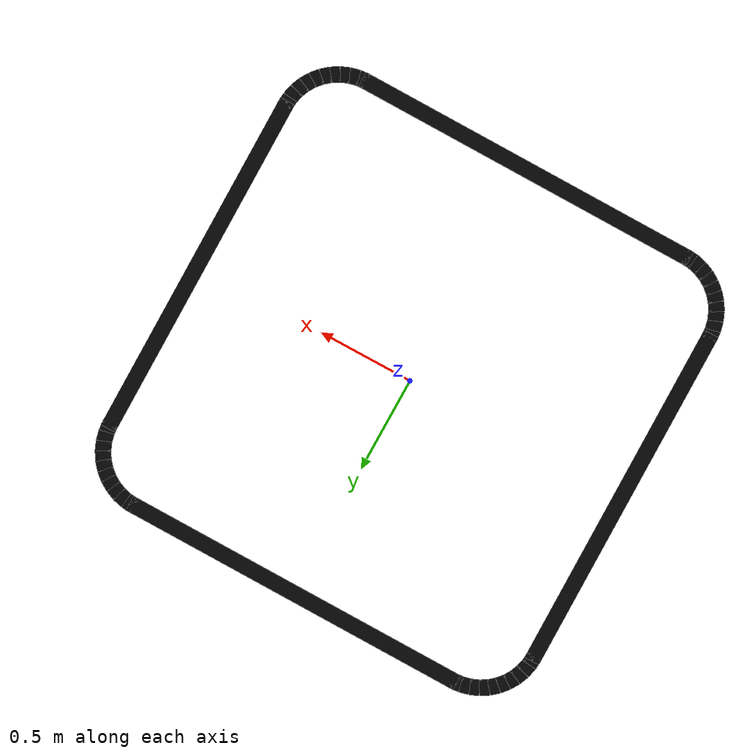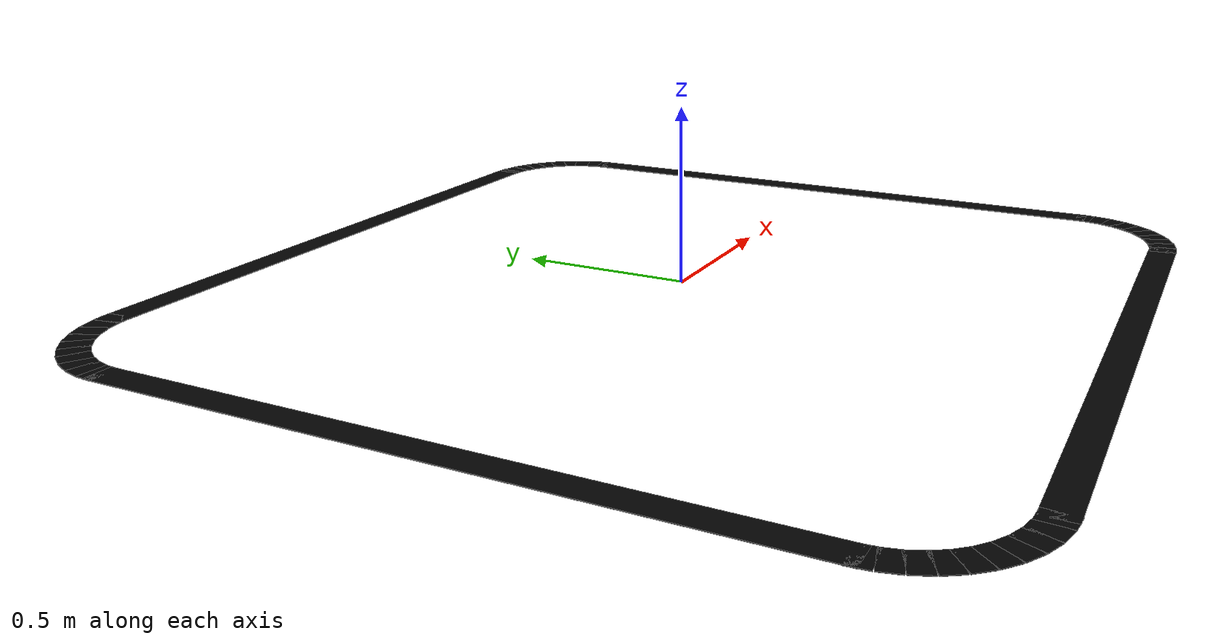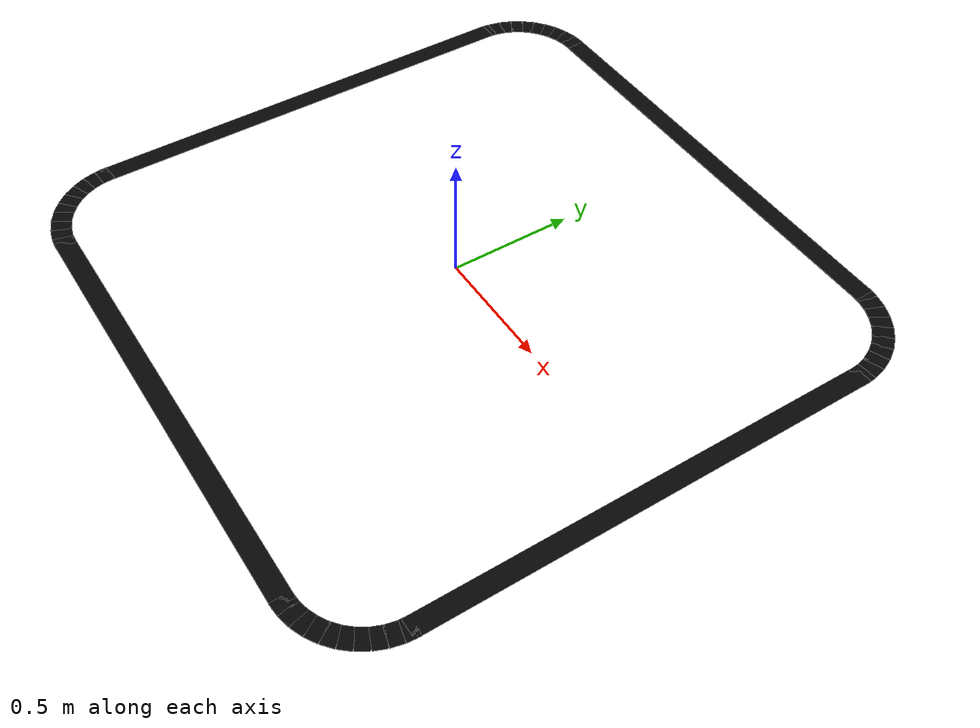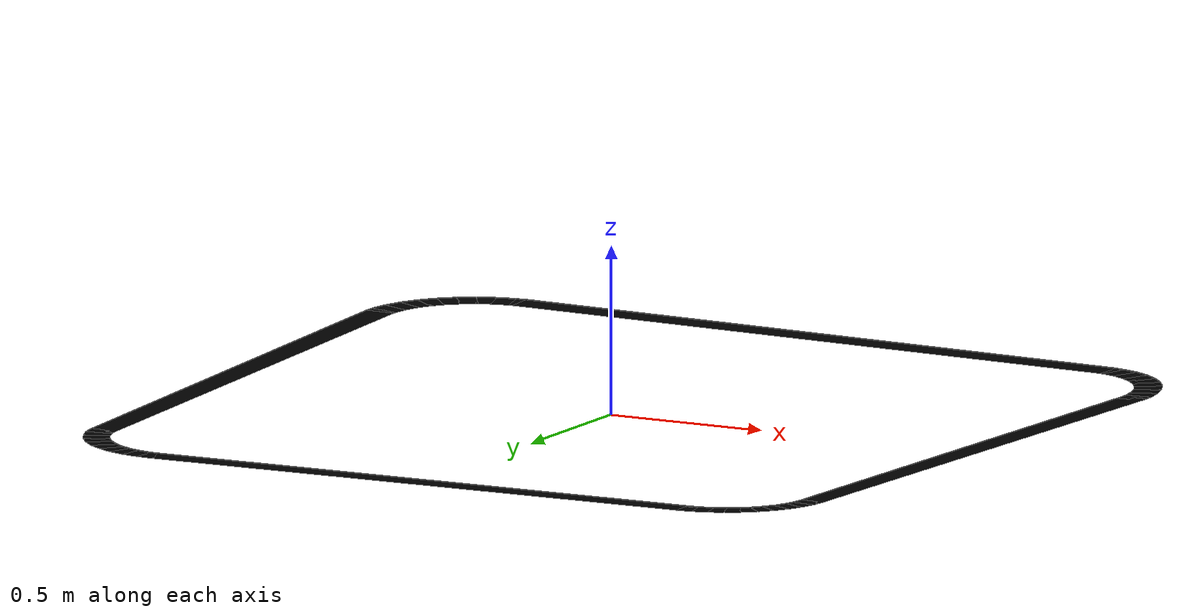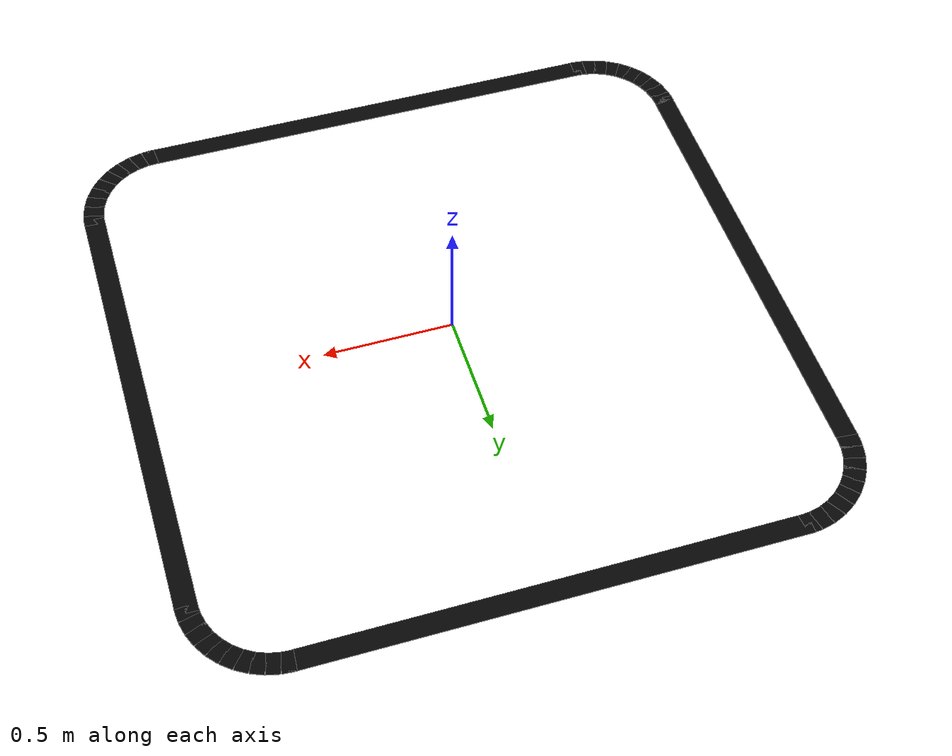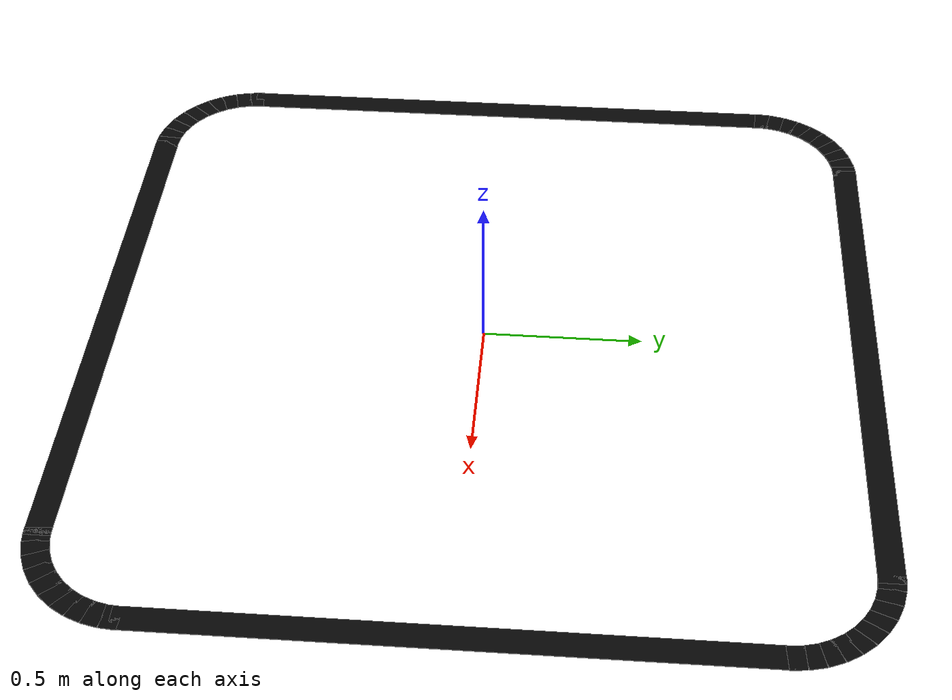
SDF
<?xml version="1.0"?>
<sdf version="1.8">
  <model name="line_track_square">
    <static>true</static>
    <link name="track">
      <visual name='seg_000'>
        <pose>0.923538 1.199075 0.001000 0.000000 0.000000 -0.078540</pose>
        <geometry>
          <box>
            <size>0.050894 0.080000 0.002000</size>
          </box>
        </geometry>
      <material>
        <ambient>0.02 0.02 0.02 1</ambient>
        <diffuse>0.02 0.02 0.02 1</diffuse>
        <specular>0.0 0.0 0.0 1</specular>
      </material>
      </visual>
      <visual name='seg_001'>
        <pose>0.970034 1.191711 0.001000 0.000000 0.000000 -0.235619</pose>
        <geometry>
          <box>
            <size>0.050894 0.080000 0.002000</size>
          </box>
        </geometry>
      <material>
        <ambient>0.02 0.02 0.02 1</ambient>
        <diffuse>0.02 0.02 0.02 1</diffuse>
        <specular>0.0 0.0 0.0 1</specular>
      </material>
      </visual>
      <visual name='seg_002'>
        <pose>1.014805 1.177164 0.001000 0.000000 0.000000 -0.392699</pose>
        <geometry>
          <box>
            <size>0.050894 0.080000 0.002000</size>
          </box>
        </geometry>
      <material>
        <ambient>0.02 0.02 0.02 1</ambient>
        <diffuse>0.02 0.02 0.02 1</diffuse>
        <specular>0.0 0.0 0.0 1</specular>
      </material>
      </visual>
      <visual name='seg_003'>
        <pose>1.056750 1.155792 0.001000 0.000000 0.000000 -0.549779</pose>
        <geometry>
          <box>
            <size>0.050894 0.080000 0.002000</size>
          </box>
        </geometry>
      <material>
        <ambient>0.02 0.02 0.02 1</ambient>
        <diffuse>0.02 0.02 0.02 1</diffuse>
        <specular>0.0 0.0 0.0 1</specular>
      </material>
      </visual>
      <visual name='seg_004'>
        <pose>1.094834 1.128122 0.001000 0.000000 0.000000 -0.706858</pose>
        <geometry>
          <box>
            <size>0.050894 0.080000 0.002000</size>
          </box>
        </geometry>
      <material>
        <ambient>0.02 0.02 0.02 1</ambient>
        <diffuse>0.02 0.02 0.02 1</diffuse>
        <specular>0.0 0.0 0.0 1</specular>
      </material>
      </visual>
      <visual name='seg_005'>
        <pose>1.128122 1.094834 0.001000 0.000000 0.000000 -0.863938</pose>
        <geometry>
          <box>
            <size>0.050894 0.080000 0.002000</size>
          </box>
        </geometry>
      <material>
        <ambient>0.02 0.02 0.02 1</ambient>
        <diffuse>0.02 0.02 0.02 1</diffuse>
        <specular>0.0 0.0 0.0 1</specular>
      </material>
      </visual>
      <visual name='seg_006'>
        <pose>1.155792 1.056750 0.001000 0.000000 0.000000 -1.021018</pose>
        <geometry>
          <box>
            <size>0.050894 0.080000 0.002000</size>
          </box>
        </geometry>
      <material>
        <ambient>0.02 0.02 0.02 1</ambient>
        <diffuse>0.02 0.02 0.02 1</diffuse>
        <specular>0.0 0.0 0.0 1</specular>
      </material>
      </visual>
      <visual name='seg_007'>
        <pose>1.177164 1.014805 0.001000 0.000000 0.000000 -1.178097</pose>
        <geometry>
          <box>
            <size>0.050894 0.080000 0.002000</size>
          </box>
        </geometry>
      <material>
        <ambient>0.02 0.02 0.02 1</ambient>
        <diffuse>0.02 0.02 0.02 1</diffuse>
        <specular>0.0 0.0 0.0 1</specular>
      </material>
      </visual>
      <visual name='seg_008'>
        <pose>1.191711 0.970034 0.001000 0.000000 0.000000 -1.335177</pose>
        <geometry>
          <box>
            <size>0.050894 0.080000 0.002000</size>
          </box>
        </geometry>
      <material>
        <ambient>0.02 0.02 0.02 1</ambient>
        <diffuse>0.02 0.02 0.02 1</diffuse>
        <specular>0.0 0.0 0.0 1</specular>
      </material>
      </visual>
      <visual name='seg_009'>
        <pose>1.199075 0.923538 0.001000 0.000000 0.000000 -1.492257</pose>
        <geometry>
          <box>
            <size>0.050894 0.080000 0.002000</size>
          </box>
        </geometry>
      <material>
        <ambient>0.02 0.02 0.02 1</ambient>
        <diffuse>0.02 0.02 0.02 1</diffuse>
        <specular>0.0 0.0 0.0 1</specular>
      </material>
      </visual>
      <visual name='seg_010'>
        <pose>0.000000 1.200000 0.001000 0.000000 0.000000 3.141593</pose>
        <geometry>
          <box>
            <size>1.854000 0.080000 0.002000</size>
          </box>
        </geometry>
      <material>
        <ambient>0.02 0.02 0.02 1</ambient>
        <diffuse>0.02 0.02 0.02 1</diffuse>
        <specular>0.0 0.0 0.0 1</specular>
      </material>
      </visual>
      <visual name='seg_011'>
        <pose>-1.199075 0.923538 0.001000 0.000000 0.000000 1.492257</pose>
        <geometry>
          <box>
            <size>0.050894 0.080000 0.002000</size>
          </box>
        </geometry>
      <material>
        <ambient>0.02 0.02 0.02 1</ambient>
        <diffuse>0.02 0.02 0.02 1</diffuse>
        <specular>0.0 0.0 0.0 1</specular>
      </material>
      </visual>
      <visual name='seg_012'>
        <pose>-1.191711 0.970034 0.001000 0.000000 0.000000 1.335177</pose>
        <geometry>
          <box>
            <size>0.050894 0.080000 0.002000</size>
          </box>
        </geometry>
      <material>
        <ambient>0.02 0.02 0.02 1</ambient>
        <diffuse>0.02 0.02 0.02 1</diffuse>
        <specular>0.0 0.0 0.0 1</specular>
      </material>
      </visual>
      <visual name='seg_013'>
        <pose>-1.177164 1.014805 0.001000 0.000000 0.000000 1.178097</pose>
        <geometry>
          <box>
            <size>0.050894 0.080000 0.002000</size>
          </box>
        </geometry>
      <material>
        <ambient>0.02 0.02 0.02 1</ambient>
        <diffuse>0.02 0.02 0.02 1</diffuse>
        <specular>0.0 0.0 0.0 1</specular>
      </material>
      </visual>
      <visual name='seg_014'>
        <pose>-1.155792 1.056750 0.001000 0.000000 0.000000 1.021018</pose>
        <geometry>
          <box>
            <size>0.050894 0.080000 0.002000</size>
          </box>
        </geometry>
      <material>
        <ambient>0.02 0.02 0.02 1</ambient>
        <diffuse>0.02 0.02 0.02 1</diffuse>
        <specular>0.0 0.0 0.0 1</specular>
      </material>
      </visual>
      <visual name='seg_015'>
        <pose>-1.128122 1.094834 0.001000 0.000000 0.000000 0.863938</pose>
        <geometry>
          <box>
            <size>0.050894 0.080000 0.002000</size>
          </box>
        </geometry>
      <material>
        <ambient>0.02 0.02 0.02 1</ambient>
        <diffuse>0.02 0.02 0.02 1</diffuse>
        <specular>0.0 0.0 0.0 1</specular>
      </material>
      </visual>
      <visual name='seg_016'>
        <pose>-1.094834 1.128122 0.001000 0.000000 0.000000 0.706858</pose>
        <geometry>
          <box>
            <size>0.050894 0.080000 0.002000</size>
          </box>
        </geometry>
      <material>
        <ambient>0.02 0.02 0.02 1</ambient>
        <diffuse>0.02 0.02 0.02 1</diffuse>
        <specular>0.0 0.0 0.0 1</specular>
      </material>
      </visual>
      <visual name='seg_017'>
        <pose>-1.056750 1.155792 0.001000 0.000000 0.000000 0.549779</pose>
        <geometry>
          <box>
            <size>0.050894 0.080000 0.002000</size>
          </box>
        </geometry>
      <material>
        <ambient>0.02 0.02 0.02 1</ambient>
        <diffuse>0.02 0.02 0.02 1</diffuse>
        <specular>0.0 0.0 0.0 1</specular>
      </material>
      </visual>
      <visual name='seg_018'>
        <pose>-1.014805 1.177164 0.001000 0.000000 0.000000 0.392699</pose>
        <geometry>
          <box>
            <size>0.050894 0.080000 0.002000</size>
          </box>
        </geometry>
      <material>
        <ambient>0.02 0.02 0.02 1</ambient>
        <diffuse>0.02 0.02 0.02 1</diffuse>
        <specular>0.0 0.0 0.0 1</specular>
      </material>
      </visual>
      <visual name='seg_019'>
        <pose>-0.970034 1.191711 0.001000 0.000000 0.000000 0.235619</pose>
        <geometry>
          <box>
            <size>0.050894 0.080000 0.002000</size>
          </box>
        </geometry>
      <material>
        <ambient>0.02 0.02 0.02 1</ambient>
        <diffuse>0.02 0.02 0.02 1</diffuse>
        <specular>0.0 0.0 0.0 1</specular>
      </material>
      </visual>
      <visual name='seg_020'>
        <pose>-0.923538 1.199075 0.001000 0.000000 0.000000 0.078540</pose>
        <geometry>
          <box>
            <size>0.050894 0.080000 0.002000</size>
          </box>
        </geometry>
      <material>
        <ambient>0.02 0.02 0.02 1</ambient>
        <diffuse>0.02 0.02 0.02 1</diffuse>
        <specular>0.0 0.0 0.0 1</specular>
      </material>
      </visual>
      <visual name='seg_021'>
        <pose>-1.200000 0.000000 0.001000 0.000000 0.000000 -1.570796</pose>
        <geometry>
          <box>
            <size>1.854000 0.080000 0.002000</size>
          </box>
        </geometry>
      <material>
        <ambient>0.02 0.02 0.02 1</ambient>
        <diffuse>0.02 0.02 0.02 1</diffuse>
        <specular>0.0 0.0 0.0 1</specular>
      </material>
      </visual>
      <visual name='seg_022'>
        <pose>-0.923538 -1.199075 0.001000 0.000000 0.000000 -3.220132</pose>
        <geometry>
          <box>
            <size>0.050894 0.080000 0.002000</size>
          </box>
        </geometry>
      <material>
        <ambient>0.02 0.02 0.02 1</ambient>
        <diffuse>0.02 0.02 0.02 1</diffuse>
        <specular>0.0 0.0 0.0 1</specular>
      </material>
      </visual>
      <visual name='seg_023'>
        <pose>-0.970034 -1.191711 0.001000 0.000000 0.000000 -3.377212</pose>
        <geometry>
          <box>
            <size>0.050894 0.080000 0.002000</size>
          </box>
        </geometry>
      <material>
        <ambient>0.02 0.02 0.02 1</ambient>
        <diffuse>0.02 0.02 0.02 1</diffuse>
        <specular>0.0 0.0 0.0 1</specular>
      </material>
      </visual>
      <visual name='seg_024'>
        <pose>-1.014805 -1.177164 0.001000 0.000000 0.000000 -3.534292</pose>
        <geometry>
          <box>
            <size>0.050894 0.080000 0.002000</size>
          </box>
        </geometry>
      <material>
        <ambient>0.02 0.02 0.02 1</ambient>
        <diffuse>0.02 0.02 0.02 1</diffuse>
        <specular>0.0 0.0 0.0 1</specular>
      </material>
      </visual>
      <visual name='seg_025'>
        <pose>-1.056750 -1.155792 0.001000 0.000000 0.000000 -3.691371</pose>
        <geometry>
          <box>
            <size>0.050894 0.080000 0.002000</size>
          </box>
        </geometry>
      <material>
        <ambient>0.02 0.02 0.02 1</ambient>
        <diffuse>0.02 0.02 0.02 1</diffuse>
        <specular>0.0 0.0 0.0 1</specular>
      </material>
      </visual>
      <visual name='seg_026'>
        <pose>-1.094834 -1.128122 0.001000 0.000000 0.000000 -3.848451</pose>
        <geometry>
          <box>
            <size>0.050894 0.080000 0.002000</size>
          </box>
        </geometry>
      <material>
        <ambient>0.02 0.02 0.02 1</ambient>
        <diffuse>0.02 0.02 0.02 1</diffuse>
        <specular>0.0 0.0 0.0 1</specular>
      </material>
      </visual>
      <visual name='seg_027'>
        <pose>-1.128122 -1.094834 0.001000 0.000000 0.000000 -4.005531</pose>
        <geometry>
          <box>
            <size>0.050894 0.080000 0.002000</size>
          </box>
        </geometry>
      <material>
        <ambient>0.02 0.02 0.02 1</ambient>
        <diffuse>0.02 0.02 0.02 1</diffuse>
        <specular>0.0 0.0 0.0 1</specular>
      </material>
      </visual>
      <visual name='seg_028'>
        <pose>-1.155792 -1.056750 0.001000 0.000000 0.000000 -4.162610</pose>
        <geometry>
          <box>
            <size>0.050894 0.080000 0.002000</size>
          </box>
        </geometry>
      <material>
        <ambient>0.02 0.02 0.02 1</ambient>
        <diffuse>0.02 0.02 0.02 1</diffuse>
        <specular>0.0 0.0 0.0 1</specular>
      </material>
      </visual>
      <visual name='seg_029'>
        <pose>-1.177164 -1.014805 0.001000 0.000000 0.000000 -4.319690</pose>
        <geometry>
          <box>
            <size>0.050894 0.080000 0.002000</size>
          </box>
        </geometry>
      <material>
        <ambient>0.02 0.02 0.02 1</ambient>
        <diffuse>0.02 0.02 0.02 1</diffuse>
        <specular>0.0 0.0 0.0 1</specular>
      </material>
      </visual>
      <visual name='seg_030'>
        <pose>-1.191711 -0.970034 0.001000 0.000000 0.000000 -4.476770</pose>
        <geometry>
          <box>
            <size>0.050894 0.080000 0.002000</size>
          </box>
        </geometry>
      <material>
        <ambient>0.02 0.02 0.02 1</ambient>
        <diffuse>0.02 0.02 0.02 1</diffuse>
        <specular>0.0 0.0 0.0 1</specular>
      </material>
      </visual>
      <visual name='seg_031'>
        <pose>-1.199075 -0.923538 0.001000 0.000000 0.000000 -4.633849</pose>
        <geometry>
          <box>
            <size>0.050894 0.080000 0.002000</size>
          </box>
        </geometry>
      <material>
        <ambient>0.02 0.02 0.02 1</ambient>
        <diffuse>0.02 0.02 0.02 1</diffuse>
        <specular>0.0 0.0 0.0 1</specular>
      </material>
      </visual>
      <visual name='seg_032'>
        <pose>0.000000 -1.200000 0.001000 0.000000 0.000000 0.000000</pose>
        <geometry>
          <box>
            <size>1.854000 0.080000 0.002000</size>
          </box>
        </geometry>
      <material>
        <ambient>0.02 0.02 0.02 1</ambient>
        <diffuse>0.02 0.02 0.02 1</diffuse>
        <specular>0.0 0.0 0.0 1</specular>
      </material>
      </visual>
      <visual name='seg_033'>
        <pose>1.199075 -0.923538 0.001000 0.000000 0.000000 -1.649336</pose>
        <geometry>
          <box>
            <size>0.050894 0.080000 0.002000</size>
          </box>
        </geometry>
      <material>
        <ambient>0.02 0.02 0.02 1</ambient>
        <diffuse>0.02 0.02 0.02 1</diffuse>
        <specular>0.0 0.0 0.0 1</specular>
      </material>
      </visual>
      <visual name='seg_034'>
        <pose>1.191711 -0.970034 0.001000 0.000000 0.000000 -1.806416</pose>
        <geometry>
          <box>
            <size>0.050894 0.080000 0.002000</size>
          </box>
        </geometry>
      <material>
        <ambient>0.02 0.02 0.02 1</ambient>
        <diffuse>0.02 0.02 0.02 1</diffuse>
        <specular>0.0 0.0 0.0 1</specular>
      </material>
      </visual>
      <visual name='seg_035'>
        <pose>1.177164 -1.014805 0.001000 0.000000 0.000000 -1.963495</pose>
        <geometry>
          <box>
            <size>0.050894 0.080000 0.002000</size>
          </box>
        </geometry>
      <material>
        <ambient>0.02 0.02 0.02 1</ambient>
        <diffuse>0.02 0.02 0.02 1</diffuse>
        <specular>0.0 0.0 0.0 1</specular>
      </material>
      </visual>
      <visual name='seg_036'>
        <pose>1.155792 -1.056750 0.001000 0.000000 0.000000 -2.120575</pose>
        <geometry>
          <box>
            <size>0.050894 0.080000 0.002000</size>
          </box>
        </geometry>
      <material>
        <ambient>0.02 0.02 0.02 1</ambient>
        <diffuse>0.02 0.02 0.02 1</diffuse>
        <specular>0.0 0.0 0.0 1</specular>
      </material>
      </visual>
      <visual name='seg_037'>
        <pose>1.128122 -1.094834 0.001000 0.000000 0.000000 -2.277655</pose>
        <geometry>
          <box>
            <size>0.050894 0.080000 0.002000</size>
          </box>
        </geometry>
      <material>
        <ambient>0.02 0.02 0.02 1</ambient>
        <diffuse>0.02 0.02 0.02 1</diffuse>
        <specular>0.0 0.0 0.0 1</specular>
      </material>
      </visual>
      <visual name='seg_038'>
        <pose>1.094834 -1.128122 0.001000 0.000000 0.000000 -2.434734</pose>
        <geometry>
          <box>
            <size>0.050894 0.080000 0.002000</size>
          </box>
        </geometry>
      <material>
        <ambient>0.02 0.02 0.02 1</ambient>
        <diffuse>0.02 0.02 0.02 1</diffuse>
        <specular>0.0 0.0 0.0 1</specular>
      </material>
      </visual>
      <visual name='seg_039'>
        <pose>1.056750 -1.155792 0.001000 0.000000 0.000000 -2.591814</pose>
        <geometry>
          <box>
            <size>0.050894 0.080000 0.002000</size>
          </box>
        </geometry>
      <material>
        <ambient>0.02 0.02 0.02 1</ambient>
        <diffuse>0.02 0.02 0.02 1</diffuse>
        <specular>0.0 0.0 0.0 1</specular>
      </material>
      </visual>
      <visual name='seg_040'>
        <pose>1.014805 -1.177164 0.001000 0.000000 0.000000 -2.748894</pose>
        <geometry>
          <box>
            <size>0.050894 0.080000 0.002000</size>
          </box>
        </geometry>
      <material>
        <ambient>0.02 0.02 0.02 1</ambient>
        <diffuse>0.02 0.02 0.02 1</diffuse>
        <specular>0.0 0.0 0.0 1</specular>
      </material>
      </visual>
      <visual name='seg_041'>
        <pose>0.970034 -1.191711 0.001000 0.000000 0.000000 -2.905973</pose>
        <geometry>
          <box>
            <size>0.050894 0.080000 0.002000</size>
          </box>
        </geometry>
      <material>
        <ambient>0.02 0.02 0.02 1</ambient>
        <diffuse>0.02 0.02 0.02 1</diffuse>
        <specular>0.0 0.0 0.0 1</specular>
      </material>
      </visual>
      <visual name='seg_042'>
        <pose>0.923538 -1.199075 0.001000 0.000000 0.000000 -3.063053</pose>
        <geometry>
          <box>
            <size>0.050894 0.080000 0.002000</size>
          </box>
        </geometry>
      <material>
        <ambient>0.02 0.02 0.02 1</ambient>
        <diffuse>0.02 0.02 0.02 1</diffuse>
        <specular>0.0 0.0 0.0 1</specular>
      </material>
      </visual>
      <visual name='seg_043'>
        <pose>1.200000 0.000000 0.001000 0.000000 0.000000 1.570796</pose>
        <geometry>
          <box>
            <size>1.854000 0.080000 0.002000</size>
          </box>
        </geometry>
      <material>
        <ambient>0.02 0.02 0.02 1</ambient>
        <diffuse>0.02 0.02 0.02 1</diffuse>
        <specular>0.0 0.0 0.0 1</specular>
      </material>
      </visual>
    </link>
  </model>
</sdf>
